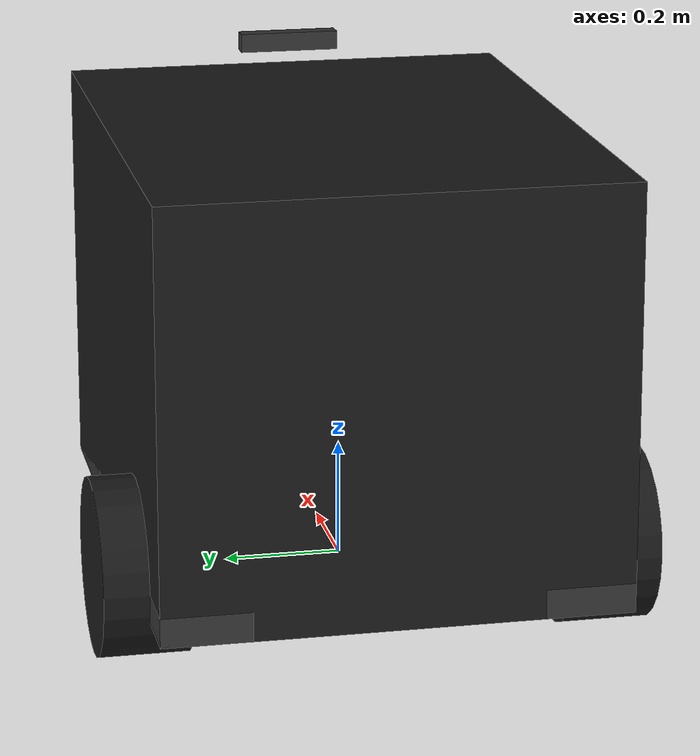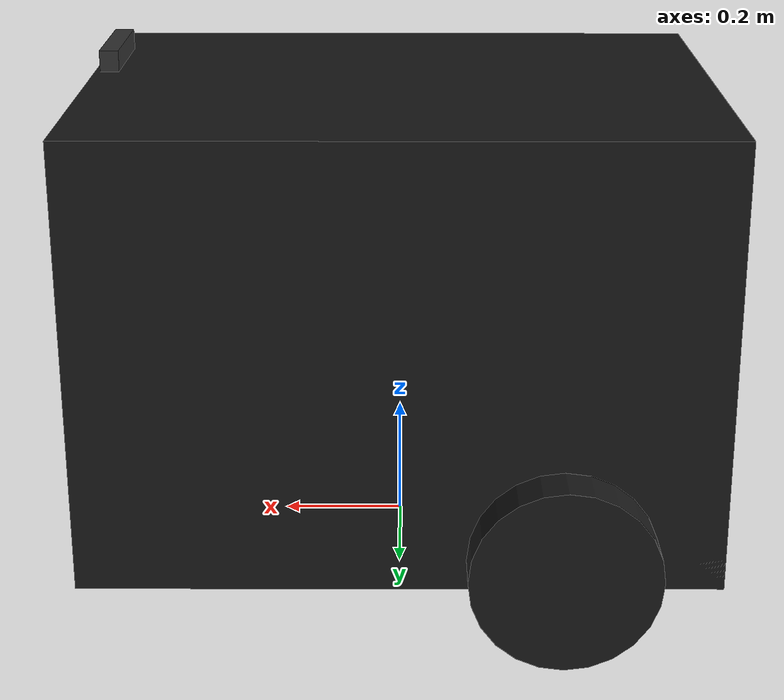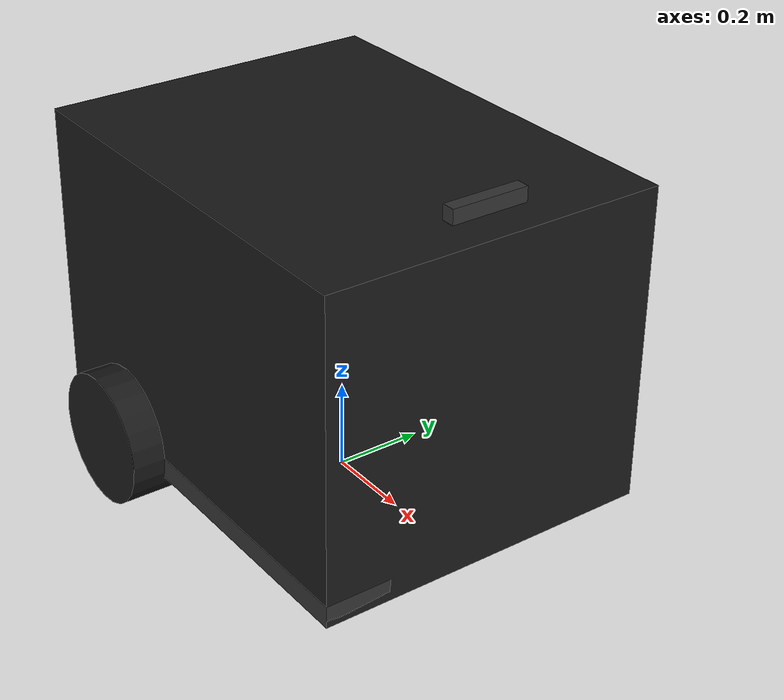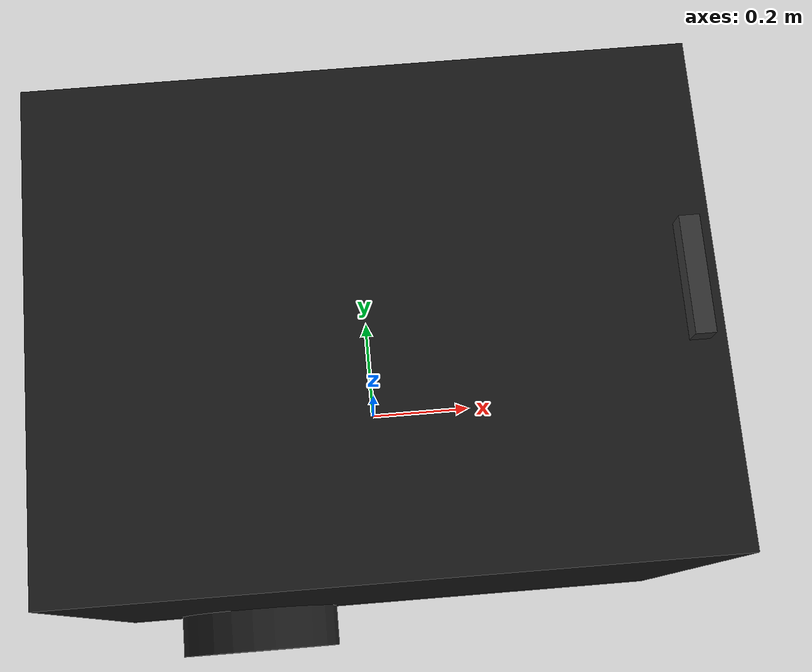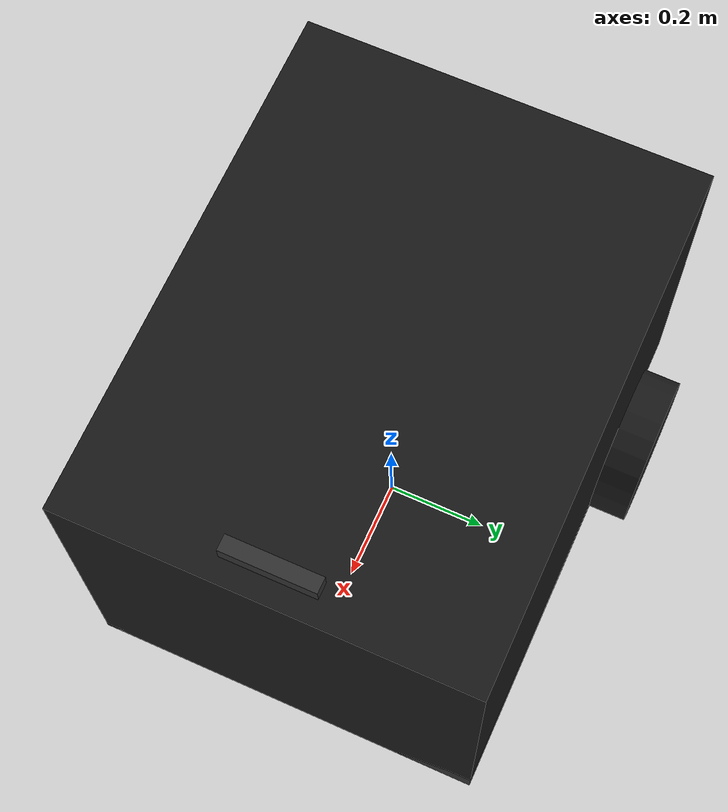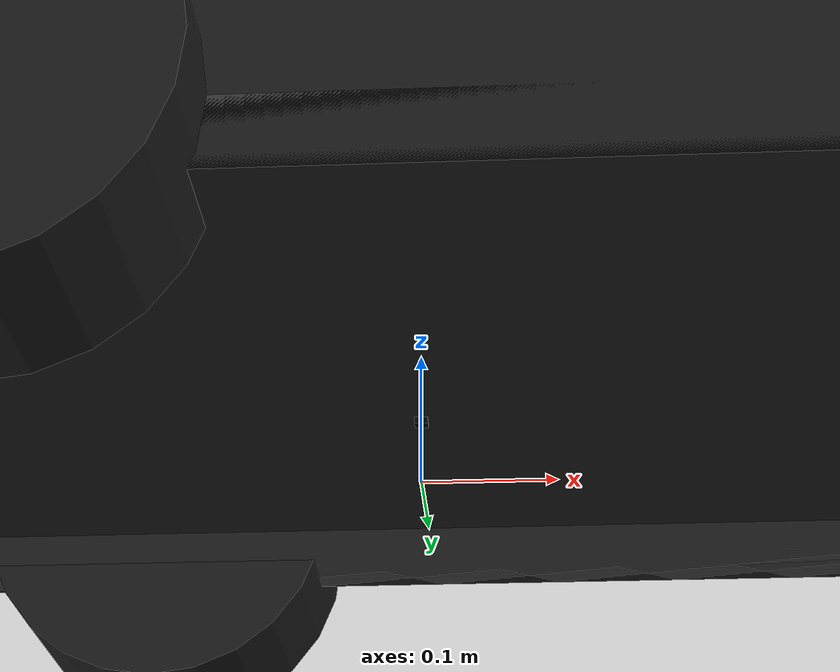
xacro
<?xml version="1.0"?>
<robot xmlns:xacro="http://www.ros.org/wiki/xacro" name="tracked_robot">

  <!-- Include common properties -->
  <xacro:include filename="$(find minimal_tracked_robot)/urdf/tracked_robot_properties.xacro" />

  <!-- Include the ZED camera macro -->
  <xacro:include filename="$(find minimal_tracked_robot)/urdf/zed_camera.xacro" />

  <!-- Include the tracked chassis macro -->
  <xacro:include filename="$(find minimal_tracked_robot)/urdf/tracked_chassis.xacro" />

  <!-- Include transmissions for motion -->
  <xacro:include filename="$(find minimal_tracked_robot)/urdf/tracked_robot_transmissions.xacro" />

  <!-- Include gazebo plugins -->
  <xacro:include filename="$(find minimal_tracked_robot)/urdf/tracked_robot_gazebo.xacro" />

  <!-- Base link (robot center) -->
  <link name="base_link">
    <visual>
      <origin xyz="0 0 0" rpy="0 0 0" />
      <geometry>
        <box size="0.01 0.01 0.01" />
      </geometry>
      <material name="transparent">
        <color rgba="0 0 0 0" />
      </material>
    </visual>
    <collision>
      <origin xyz="0 0 0" rpy="0 0 0" />
      <geometry>
        <box size="0.01 0.01 0.01" />
      </geometry>
    </collision>
    <inertial>
      <mass value="0.01" />
      <inertia ixx="0.0001" ixy="0.0" ixz="0.0" iyy="0.0001" iyz="0.0" izz="0.0001" />
    </inertial>
  </link>

  <!-- Robot Footprint -->
  <link name="base_footprint">
    <visual>
      <origin xyz="0 0 0" rpy="0 0 0" />
      <geometry>
        <box size="0.001 0.001 0.001" />
      </geometry>
      <material name="transparent" />
    </visual>
    <collision>
      <origin xyz="0 0 0" rpy="0 0 0" />
      <geometry>
        <box size="0.001 0.001 0.001" />
      </geometry>
    </collision>
    <inertial>
      <mass value="0.0001" />
      <inertia ixx="0.0001" ixy="0.0" ixz="0.0" iyy="0.0001" iyz="0.0" izz="0.0001" />
    </inertial>
  </link>

  <joint name="base_footprint_to_base_link" type="fixed">
    <parent link="base_footprint" />
    <child link="base_link" />
    <origin xyz="0 0 ${ground_clearance}" rpy="0 0 0" />
  </joint>

  <!-- Include the robot chassis -->
  <xacro:tracked_chassis parent="base_link" />

  <!-- Include the ZED2i camera -->
  <xacro:zed_camera name="zed2i" parent="chassis_link">
    <origin xyz="${chassis_length/2 - 0.05} 0 ${chassis_height/2 + 0.05}" rpy="0 0 0" />
  </xacro:zed_camera>

  <!-- IMU link -->
  <link name="imu_link">
    <visual>
      <origin xyz="0 0 0" rpy="0 0 0" />
      <geometry>
        <box size="0.05 0.05 0.02" />
      </geometry>
      <material name="blue">
        <color rgba="0 0 1 1" />
      </material>
    </visual>
    <collision>
      <origin xyz="0 0 0" rpy="0 0 0" />
      <geometry>
        <box size="0.05 0.05 0.02" />
      </geometry>
    </collision>
    <inertial>
      <mass value="0.01" />
      <inertia ixx="0.0001" ixy="0.0" ixz="0.0" iyy="0.0001" iyz="0.0" izz="0.0001" />
    </inertial>
  </link>

  <joint name="imu_joint" type="fixed">
    <parent link="chassis_link" />
    <child link="imu_link" />
    <origin xyz="0 0 ${chassis_height/2 - 0.02}" rpy="0 0 0" />
  </joint>

  <!-- Auto-docking IR sensor -->
  <link name="dock_ir_link">
    <visual>
      <origin xyz="0 0 0" rpy="0 0 0" />
      <geometry>
        <box size="0.02 0.04 0.02" />
      </geometry>
      <material name="red">
        <color rgba="1 0 0 1" />
      </material>
    </visual>
    <collision>
      <origin xyz="0 0 0" rpy="0 0 0" />
      <geometry>
        <box size="0.02 0.04 0.02" />
      </geometry>
    </collision>
    <inertial>
      <mass value="0.01" />
      <inertia ixx="0.0001" ixy="0.0" ixz="0.0" iyy="0.0001" iyz="0.0" izz="0.0001" />
    </inertial>
  </link>

  <joint name="dock_ir_joint" type="fixed">
    <parent link="chassis_link" />
    <child link="dock_ir_link" />
    <origin xyz="${-chassis_length/2 + 0.02} 0 ${-chassis_height/2 + 0.02}" rpy="0 0 0" />
  </joint>

  <!-- Jetson Orin NX -->
  <link name="jetson_link">
    <visual>
      <origin xyz="0 0 0" rpy="0 0 0" />
      <geometry>
        <box size="0.12 0.18 0.03" />
      </geometry>
      <material name="green">
        <color rgba="0 0.8 0 1" />
      </material>
    </visual>
    <collision>
      <origin xyz="0 0 0" rpy="0 0 0" />
      <geometry>
        <box size="0.12 0.18 0.03" />
      </geometry>
    </collision>
    <inertial>
      <mass value="0.5" />
      <inertia ixx="0.001" ixy="0.0" ixz="0.0" iyy="0.001" iyz="0.0" izz="0.001" />
    </inertial>
  </link>

  <joint name="jetson_joint" type="fixed">
    <parent link="chassis_link" />
    <child link="jetson_link" />
    <origin xyz="0 0 ${chassis_height/2 - 0.05}" rpy="0 0 0" />
  </joint>

</robot>

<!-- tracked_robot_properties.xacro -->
<robot xmlns:xacro="http://www.ros.org/wiki/xacro">

  <!-- Robot dimensions - matches the spec in task (780x1015x720 mm - W,L,H) -->
  <xacro:property name="chassis_width" value="0.78" />   <!-- 780mm -->
  <xacro:property name="chassis_length" value="1.015" /> <!-- 1015mm -->
  <xacro:property name="chassis_height" value="0.72" />  <!-- 720mm -->
  <xacro:property name="chassis_mass" value="60.0" />    <!-- Approximate mass in kg -->

  <!-- Track dimensions -->
  <xacro:property name="track_width" value="0.15" />     <!-- Each track is 15cm wide -->
  <xacro:property name="track_length" value="${chassis_length}" />
  <xacro:property name="track_thickness" value="0.05" /> <!-- 5cm thick track -->
  <xacro:property name="track_mass" value="8.0" />       <!-- Each track mass in kg -->

  <!-- Wheel dimensions -->
  <xacro:property name="wheel_radius" value="0.15" />    <!-- 30cm diameter wheels -->
  <xacro:property name="wheel_width" value="${track_width}" />
  <xacro:property name="wheel_mass" value="4.0" />       <!-- Each wheel mass in kg -->

  <!-- Motor properties for ODrive BLDC motors (1kW each) -->
  <xacro:property name="motor_mass" value="2.5" />       <!-- Each motor mass in kg -->
  <xacro:property name="motor_radius" value="0.06" />    <!-- Motor radius -->
  <xacro:property name="motor_length" value="0.12" />    <!-- Motor length -->

  <!-- Ground clearance -->
  <xacro:property name="ground_clearance" value="0.05" /> <!-- 5cm ground clearance -->

  <!-- ZED 2i camera dimensions -->
  <xacro:property name="zed_width" value="0.175" />      <!-- 175mm -->
  <xacro:property name="zed_height" value="0.033" />     <!-- 33mm -->
  <xacro:property name="zed_depth" value="0.03" />       <!-- 30mm -->
  <xacro:property name="zed_mass" value="0.124" />

  <!-- Inertia macro -->
  <xacro:macro name="box_inertia" params="m x y z">
    <inertia
      ixx="${m*(y*y+z*z)/12}" ixy="0" ixz="0"
      iyy="${m*(x*x+z*z)/12}" iyz="0"
      izz="${m*(x*x+y*y)/12}" />
  </xacro:macro>

  <xacro:macro name="cylinder_inertia" params="m r h">
    <inertia
      ixx="${m*(3*r*r+h*h)/12}" ixy="0" ixz="0"
      iyy="${m*(3*r*r+h*h)/12}" iyz="0"
      izz="${m*r*r/2}" />
  </xacro:macro>

</robot>

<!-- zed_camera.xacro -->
<robot xmlns:xacro="http://www.ros.org/wiki/xacro">

  <xacro:macro name="zed_camera" params="name parent *origin">
    <!-- ZED 2i camera body -->
    <link name="${name}_link">
      <visual>
        <origin xyz="0 0 0" rpy="0 0 0"/>
        <geometry>
          <box size="${zed_depth} ${zed_width} ${zed_height}"/>
        </geometry>
        <material name="zed_material">
          <color rgba="0.2 0.2 0.2 1.0"/>
        </material>
      </visual>
      <collision>
        <origin xyz="0 0 0" rpy="0 0 0"/>
        <geometry>
          <box size="${zed_depth} ${zed_width} ${zed_height}"/>
        </geometry>
      </collision>
      <inertial>
        <mass value="${zed_mass}"/>
        <xacro:box_inertia m="${zed_mass}" x="${zed_depth}" y="${zed_width}" z="${zed_height}"/>
      </inertial>
    </link>

    <joint name="${name}_joint" type="fixed">
      <parent link="${parent}"/>
      <child link="${name}_link"/>
      <xacro:insert_block name="origin"/>
    </joint>

    <!-- ZED left camera optical frame -->
    <link name="${name}_left_camera_frame">
      <inertial>
        <mass value="0.001"/>
        <inertia ixx="0.0001" ixy="0" ixz="0" iyy="0.0001" iyz="0" izz="0.0001"/>
      </inertial>
    </link>

    <joint name="${name}_left_camera_joint" type="fixed">
      <parent link="${name}_link"/>
      <child link="${name}_left_camera_frame"/>
      <origin xyz="0 -0.06 0" rpy="0 0 0"/>
    </joint>

    <link name="${name}_left_camera_optical_frame">
      <inertial>
        <mass value="0.001"/>
        <inertia ixx="0.0001" ixy="0" ixz="0" iyy="0.0001" iyz="0" izz="0.0001"/>
      </inertial>
    </link>

    <joint name="${name}_left_camera_optical_joint" type="fixed">
      <parent link="${name}_left_camera_frame"/>
      <child link="${name}_left_camera_optical_frame"/>
      <!-- +x forward, +y left, +z up to +z forward, +x right, +y down -->
      <origin xyz="0 0 0" rpy="${-pi/2} 0 ${-pi/2}"/>
    </joint>

    <!-- ZED right camera optical frame -->
    <link name="${name}_right_camera_frame">
      <inertial>
        <mass value="0.001"/>
        <inertia ixx="0.0001" ixy="0" ixz="0" iyy="0.0001" iyz="0" izz="0.0001"/>
      </inertial>
    </link>

    <joint name="${name}_right_camera_joint" type="fixed">
      <parent link="${name}_link"/>
      <child link="${name}_right_camera_frame"/>
      <origin xyz="0 0.06 0" rpy="0 0 0"/>
    </joint>

    <link name="${name}_right_camera_optical_frame">
      <inertial>
        <mass value="0.001"/>
        <inertia ixx="0.0001" ixy="0" ixz="0" iyy="0.0001" iyz="0" izz="0.0001"/>
      </inertial>
    </link>

    <joint name="${name}_right_camera_optical_joint" type="fixed">
      <parent link="${name}_right_camera_frame"/>
      <child link="${name}_right_camera_optical_frame"/>
      <!-- +x forward, +y left, +z up to +z forward, +x right, +y down -->
      <origin xyz="0 0 0" rpy="${-pi/2} 0 ${-pi/2}"/>
    </joint>

    <!-- ZED center frame (between the cameras) -->
    <link name="${name}_center_frame">
      <inertial>
        <mass value="0.001"/>
        <inertia ixx="0.0001" ixy="0" ixz="0" iyy="0.0001" iyz="0" izz="0.0001"/>
      </inertial>
    </link>

    <joint name="${name}_center_joint" type="fixed">
      <parent link="${name}_link"/>
      <child link="${name}_center_frame"/>
      <origin xyz="0 0 0" rpy="0 0 0"/>
    </joint>

    <!-- ZED RGB center camera optical frame -->
    <link name="${name}_rgb_camera_frame">
      <inertial>
        <mass value="0.001"/>
        <inertia ixx="0.0001" ixy="0" ixz="0" iyy="0.0001" iyz="0" izz="0.0001"/>
      </inertial>
    </link>

    <joint name="${name}_rgb_camera_joint" type="fixed">
      <parent link="${name}_center_frame"/>
      <child link="${name}_rgb_camera_frame"/>
      <origin xyz="0 0 0" rpy="0 0 0"/>
    </joint>

    <link name="${name}_rgb_camera_optical_frame">
      <inertial>
        <mass value="0.001"/>
        <inertia ixx="0.0001" ixy="0" ixz="0" iyy="0.0001" iyz="0" izz="0.0001"/>
      </inertial>
    </link>

    <joint name="${name}_rgb_camera_optical_joint" type="fixed">
      <parent link="${name}_rgb_camera_frame"/>
      <child link="${name}_rgb_camera_optical_frame"/>
      <!-- +x forward, +y left, +z up to +z forward, +x right, +y down -->
      <origin xyz="0 0 0" rpy="${-pi/2} 0 ${-pi/2}"/>
    </joint>

    <!-- ZED depth center camera optical frame -->
    <link name="${name}_depth_camera_frame">
      <inertial>
        <mass value="0.001"/>
        <inertia ixx="0.0001" ixy="0" ixz="0" iyy="0.0001" iyz="0" izz="0.0001"/>
      </inertial>
    </link>

    <joint name="${name}_depth_camera_joint" type="fixed">
      <parent link="${name}_center_frame"/>
      <child link="${name}_depth_camera_frame"/>
      <origin xyz="0 0 0" rpy="0 0 0"/>
    </joint>

    <link name="${name}_depth_camera_optical_frame">
      <inertial>
        <mass value="0.001"/>
        <inertia ixx="0.0001" ixy="0" ixz="0" iyy="0.0001" iyz="0" izz="0.0001"/>
      </inertial>
    </link>

    <joint name="${name}_depth_camera_optical_joint" type="fixed">
      <parent link="${name}_depth_camera_frame"/>
      <child link="${name}_depth_camera_optical_frame"/>
      <!-- +x forward, +y left, +z up to +z forward, +x right, +y down -->
      <origin xyz="0 0 0" rpy="${-pi/2} 0 ${-pi/2}"/>
    </joint>
  </xacro:macro>
</robot>

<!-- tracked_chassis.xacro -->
<robot xmlns:xacro="http://www.ros.org/wiki/xacro">

  <xacro:macro name="tracked_chassis" params="parent">
    <!-- Main chassis body -->
    <link name="chassis_link">
      <visual>
        <origin xyz="0 0 0" rpy="0 0 0"/>
        <geometry>
          <box size="${chassis_length} ${chassis_width} ${chassis_height}"/>
        </geometry>
        <material name="chassis_material">
          <color rgba="0.1 0.1 0.1 1.0"/>
        </material>
      </visual>
      <collision>
        <origin xyz="0 0 0" rpy="0 0 0"/>
        <geometry>
          <box size="${chassis_length} ${chassis_width} ${chassis_height}"/>
        </geometry>
      </collision>
      <inertial>
        <mass value="${chassis_mass}"/>
        <xacro:box_inertia m="${chassis_mass}" x="${chassis_length}" y="${chassis_width}" z="${chassis_height}"/>
      </inertial>
    </link>

    <joint name="chassis_joint" type="fixed">
      <parent link="${parent}"/>
      <child link="chassis_link"/>
      <origin xyz="0 0 ${chassis_height/2}" rpy="0 0 0"/>
    </joint>

    <!-- Left track assembly -->
    <link name="left_track_link">
      <visual>
        <origin xyz="0 0 0" rpy="0 0 0"/>
        <geometry>
          <box size="${track_length} ${track_width} ${track_thickness}"/>
        </geometry>
        <material name="track_material">
          <color rgba="0.2 0.2 0.2 1.0"/>
        </material>
      </visual>
      <collision>
        <origin xyz="0 0 0" rpy="0 0 0"/>
        <geometry>
          <box size="${track_length} ${track_width} ${track_thickness}"/>
        </geometry>
      </collision>
      <inertial>
        <mass value="${track_mass}"/>
        <xacro:box_inertia m="${track_mass}" x="${track_length}" y="${track_width}" z="${track_thickness}"/>
      </inertial>
    </link>

    <joint name="left_track_joint" type="fixed">
      <parent link="chassis_link"/>
      <child link="left_track_link"/>
      <origin xyz="0 ${chassis_width/2 - track_width/2} ${-chassis_height/2 - track_thickness/2 + ground_clearance}" rpy="0 0 0"/>
    </joint>

    <!-- Right track assembly -->
    <link name="right_track_link">
      <visual>
        <origin xyz="0 0 0" rpy="0 0 0"/>
        <geometry>
          <box size="${track_length} ${track_width} ${track_thickness}"/>
        </geometry>
        <material name="track_material">
          <color rgba="0.2 0.2 0.2 1.0"/>
        </material>
      </visual>
      <collision>
        <origin xyz="0 0 0" rpy="0 0 0"/>
        <geometry>
          <box size="${track_length} ${track_width} ${track_thickness}"/>
        </geometry>
      </collision>
      <inertial>
        <mass value="${track_mass}"/>
        <xacro:box_inertia m="${track_mass}" x="${track_length}" y="${track_width}" z="${track_thickness}"/>
      </inertial>
    </link>

    <joint name="right_track_joint" type="fixed">
      <parent link="chassis_link"/>
      <child link="right_track_link"/>
      <origin xyz="0 ${-chassis_width/2 + track_width/2} ${-chassis_height/2 - track_thickness/2 + ground_clearance}" rpy="0 0 0"/>
    </joint>

    <!-- Left drive wheel -->
    <link name="left_wheel_link">
      <visual>
        <origin xyz="0 0 0" rpy="${pi/2} 0 0"/>
        <geometry>
          <cylinder radius="${wheel_radius}" length="${wheel_width}"/>
        </geometry>
        <material name="wheel_material">
          <color rgba="0.1 0.1 0.1 1.0"/>
        </material>
      </visual>
      <collision>
        <origin xyz="0 0 0" rpy="${pi/2} 0 0"/>
        <geometry>
          <cylinder radius="${wheel_radius}" length="${wheel_width}"/>
        </geometry>
      </collision>
      <inertial>
        <mass value="${wheel_mass}"/>
        <xacro:cylinder_inertia m="${wheel_mass}" r="${wheel_radius}" h="${wheel_width}"/>
      </inertial>
    </link>

    <joint name="left_wheel_joint" type="continuous">
      <parent link="chassis_link"/>
      <child link="left_wheel_link"/>
      <origin xyz="${-chassis_length/4} ${chassis_width/2} ${-chassis_height/2 + ground_clearance}" rpy="0 0 0"/>
      <axis xyz="0 1 0"/>
      <dynamics damping="0.1" friction="0.1"/>
    </joint>

    <!-- Right drive wheel -->
    <link name="right_wheel_link">
      <visual>
        <origin xyz="0 0 0" rpy="${pi/2} 0 0"/>
        <geometry>
          <cylinder radius="${wheel_radius}" length="${wheel_width}"/>
        </geometry>
        <material name="wheel_material">
          <color rgba="0.1 0.1 0.1 1.0"/>
        </material>
      </visual>
      <collision>
        <origin xyz="0 0 0" rpy="${pi/2} 0 0"/>
        <geometry>
          <cylinder radius="${wheel_radius}" length="${wheel_width}"/>
        </geometry>
      </collision>
      <inertial>
        <mass value="${wheel_mass}"/>
        <xacro:cylinder_inertia m="${wheel_mass}" r="${wheel_radius}" h="${wheel_width}"/>
      </inertial>
    </link>

    <joint name="right_wheel_joint" type="continuous">
      <parent link="chassis_link"/>
      <child link="right_wheel_link"/>
      <origin xyz="${-chassis_length/4} ${-chassis_width/2} ${-chassis_height/2 + ground_clearance}" rpy="0 0 0"/>
      <axis xyz="0 1 0"/>
      <dynamics damping="0.1" friction="0.1"/>
    </joint>

    <!-- Left motor -->
    <link name="left_motor_link">
      <visual>
        <origin xyz="0 0 0" rpy="0 ${pi/2} 0"/>
        <geometry>
          <cylinder radius="${motor_radius}" length="${motor_length}"/>
        </geometry>
        <material name="motor_material">
          <color rgba="0.4 0.4 0.4 1.0"/>
        </material>
      </visual>
      <collision>
        <origin xyz="0 0 0" rpy="0 ${pi/2} 0"/>
        <geometry>
          <cylinder radius="${motor_radius}" length="${motor_length}"/>
        </geometry>
      </collision>
      <inertial>
        <mass value="${motor_mass}"/>
        <xacro:cylinder_inertia m="${motor_mass}" r="${motor_radius}" h="${motor_length}"/>
      </inertial>
    </link>

    <joint name="left_motor_joint" type="fixed">
      <parent link="chassis_link"/>
      <child link="left_motor_link"/>
      <origin xyz="${-chassis_length/4 - motor_length/2} ${chassis_width/2 - motor_radius} ${-chassis_height/2 + ground_clearance + motor_radius}" rpy="0 0 0"/>
    </joint>

    <!-- Right motor -->
    <link name="right_motor_link">
      <visual>
        <origin xyz="0 0 0" rpy="0 ${pi/2} 0"/>
        <geometry>
          <cylinder radius="${motor_radius}" length="${motor_length}"/>
        </geometry>
        <material name="motor_material">
          <color rgba="0.4 0.4 0.4 1.0"/>
        </material>
      </visual>
      <collision>
        <origin xyz="0 0 0" rpy="0 ${pi/2} 0"/>
        <geometry>
          <cylinder radius="${motor_radius}" length="${motor_length}"/>
        </geometry>
      </collision>
      <inertial>
        <mass value="${motor_mass}"/>
        <xacro:cylinder_inertia m="${motor_mass}" r="${motor_radius}" h="${motor_length}"/>
      </inertial>
    </link>

    <joint name="right_motor_joint" type="fixed">
      <parent link="chassis_link"/>
      <child link="right_motor_link"/>
      <origin xyz="${-chassis_length/4 - motor_length/2} ${-chassis_width/2 + motor_radius} ${-chassis_height/2 + ground_clearance + motor_radius}" rpy="0 0 0"/>
    </joint>

    <!-- ODrive controller -->
    <link name="odrive_link">
      <visual>
        <origin xyz="0 0 0" rpy="0 0 0"/>
        <geometry>
          <box size="0.12 0.08 0.03"/>
        </geometry>
        <material name="odrive_material">
          <color rgba="0.0 0.0 0.8 1.0"/>
        </material>
      </visual>
      <collision>
        <origin xyz="0 0 0" rpy="0 0 0"/>
        <geometry>
          <box size="0.12 0.08 0.03"/>
        </geometry>
      </collision>
      <inertial>
        <mass value="0.5"/>
        <xacro:box_inertia m="0.5" x="0.12" y="0.08" z="0.03"/>
      </inertial>
    </link>

    <joint name="odrive_joint" type="fixed">
      <parent link="chassis_link"/>
      <child link="odrive_link"/>
      <origin xyz="${-chassis_length/4} 0 ${-chassis_height/2 + 0.1}" rpy="0 0 0"/>
    </joint>
  </xacro:macro>
</robot>
